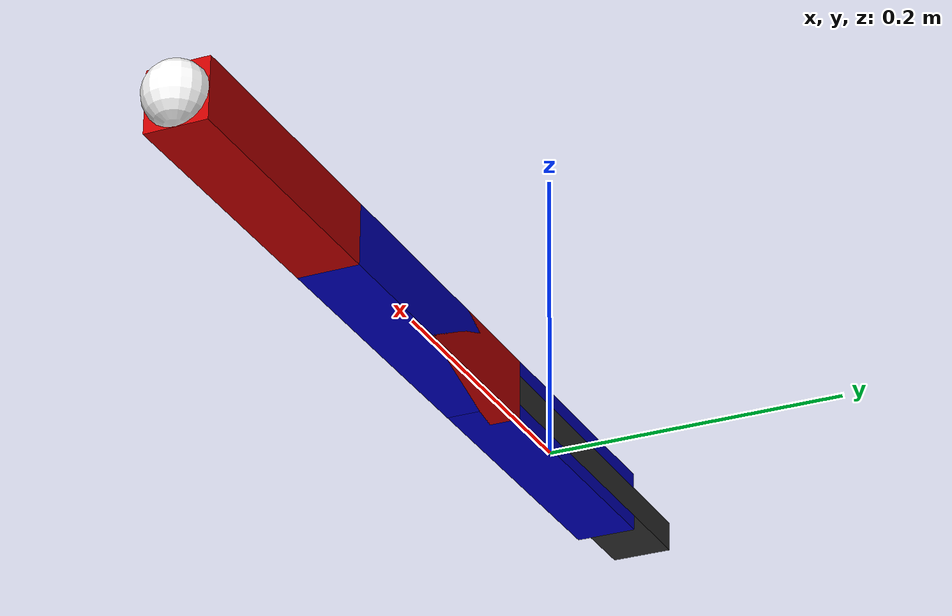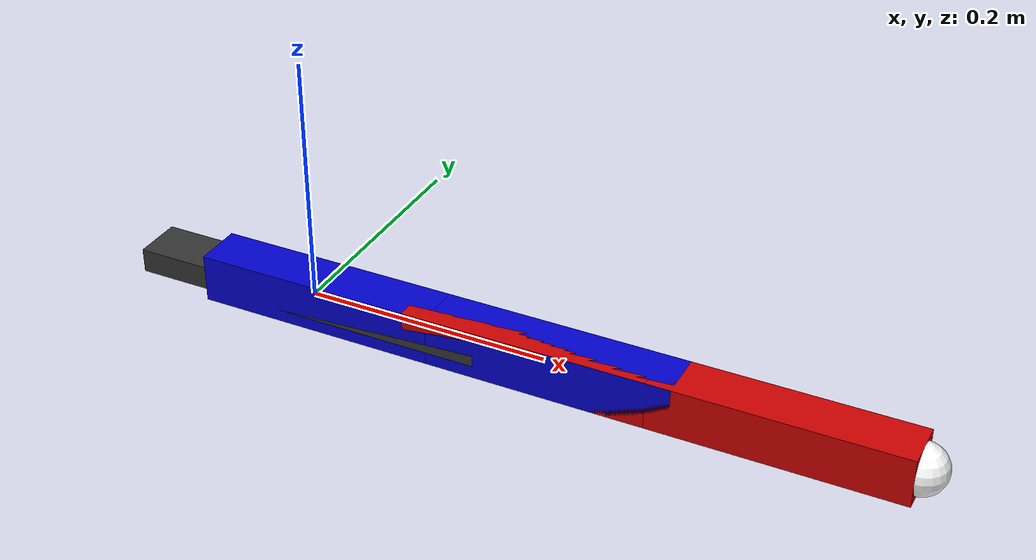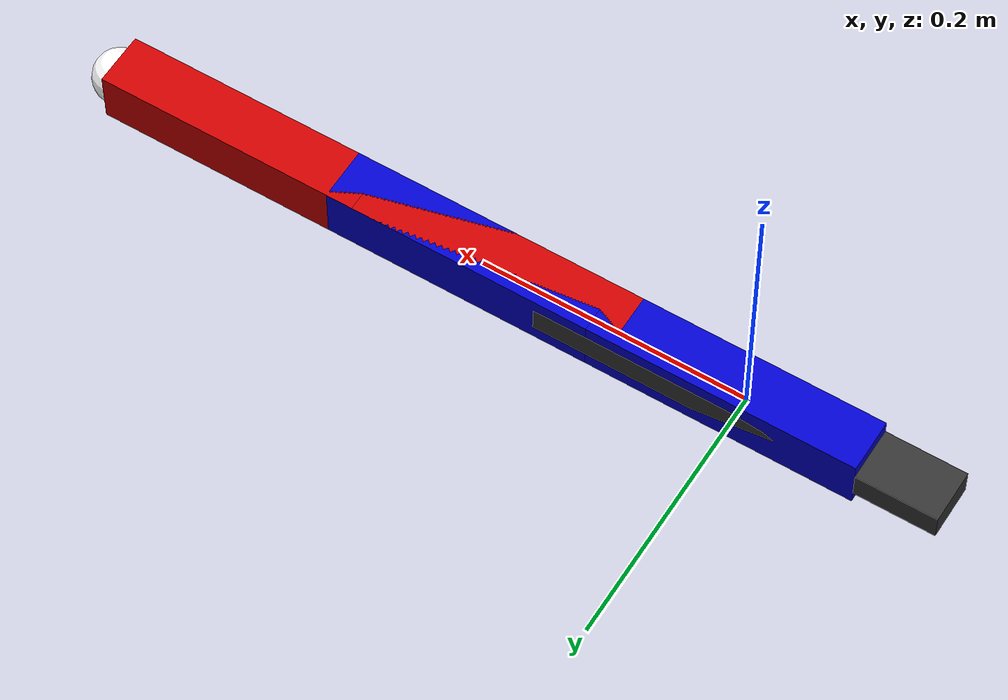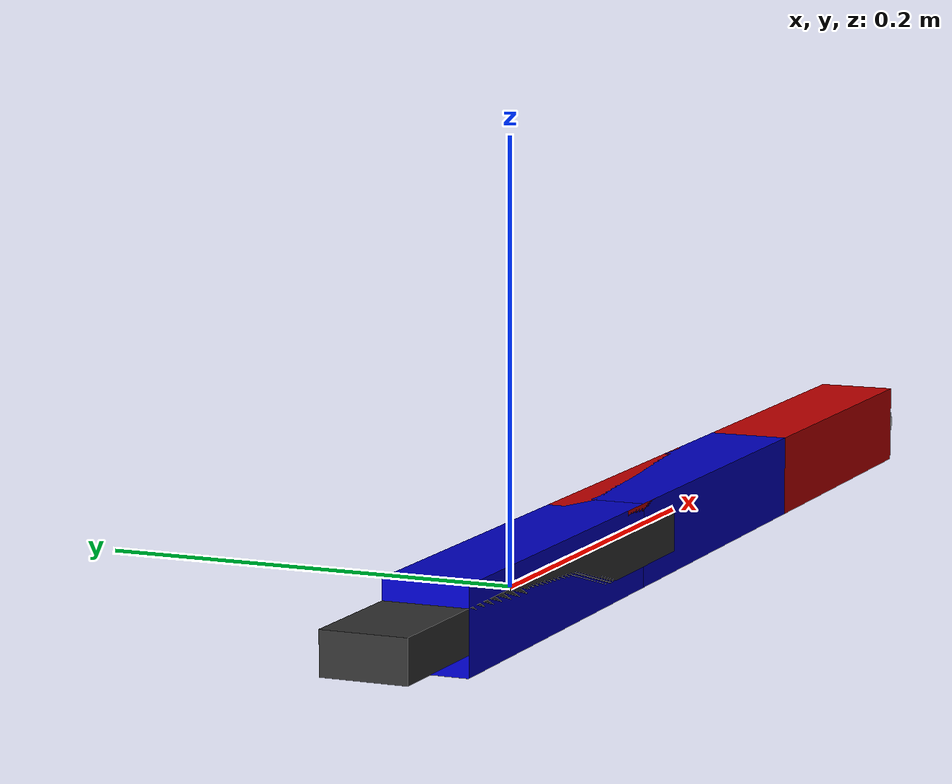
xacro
<?xml version="1.0"?>
<robot xmlns:xacro="http://www.ros.org/wiki/xacro" name="brazo_5r_cajas">

  <xacro:property name="l0" value="0.09" /> <xacro:property name="l1" value="0.20" /> <xacro:property name="l2" value="0.20" /> <xacro:property name="width" value="0.04" />
  <xacro:property name="height" value="0.04" />

  <link name="base_link">
    <visual>
      <origin xyz="0 0 0" rpy="0 0 0"/>
      <geometry>
        <box size="0.30 ${width} 0.02"/>
      </geometry>
      <material name="grey"><color rgba="0.2 0.2 0.2 1"/></material>
    </visual>
  </link>

  <xacro:macro name="crear_brazo" params="prefix reflect color_name">

    <joint name="motor_${prefix}" type="revolute">
      <parent link="base_link"/>
      <child link="link1_${prefix}"/>
      <origin xyz="${reflect * l0} 0 0" rpy="0 0 0"/>
      <axis xyz="0 0 1"/>
      <limit lower="-3.14" upper="3.14" effort="100" velocity="10"/>
    </joint>

    <link name="link1_${prefix}">
      <visual>
        <origin xyz="${l1/2} 0 0" rpy="0 0 0"/>
        <geometry>
          <box size="${l1} ${width} ${height}"/>
        </geometry>
        <material name="${color_name}"/>
      </visual>
    </link>

    <joint name="codo_${prefix}" type="revolute">
      <parent link="link1_${prefix}"/>
      <child link="link2_${prefix}"/>
      <origin xyz="${l1} 0 0" rpy="0 0 0"/>
      <axis xyz="0 0 1"/>
      <limit lower="-3.14" upper="3.14" effort="100" velocity="10"/>
    </joint>

    <link name="link2_${prefix}">
      <visual>
        <origin xyz="${l2/2} 0 0" rpy="0 0 0"/>
        <geometry>
           <box size="${l2} ${width} ${height}"/>
        </geometry>
        <material name="${color_name}"/>
      </visual>
    </link>

    <joint name="punta_${prefix}_joint" type="fixed">
        <parent link="link2_${prefix}"/>
        <child link="punta_${prefix}"/>
        <origin xyz="${l2} 0 0" rpy="0 0 0"/>
    </joint>
    <link name="punta_${prefix}">
        <visual>
            <geometry><sphere radius="0.02"/></geometry>
            <material name="white"><color rgba="1 1 1 1"/></material>
        </visual>
    </link>

  </xacro:macro>

  <material name="blue"><color rgba="0 0 0.8 1"/></material>
  <material name="red"><color rgba="0.8 0 0 1"/></material>

  <xacro:crear_brazo prefix="izq" reflect="-1" color_name="blue"/>
  <xacro:crear_brazo prefix="der" reflect="1"  color_name="red"/>

</robot>
